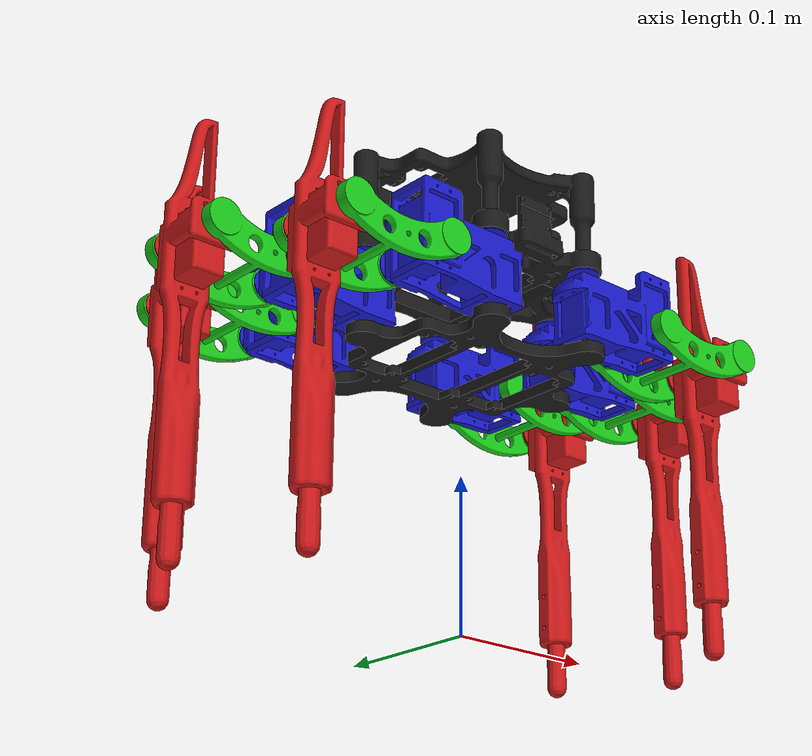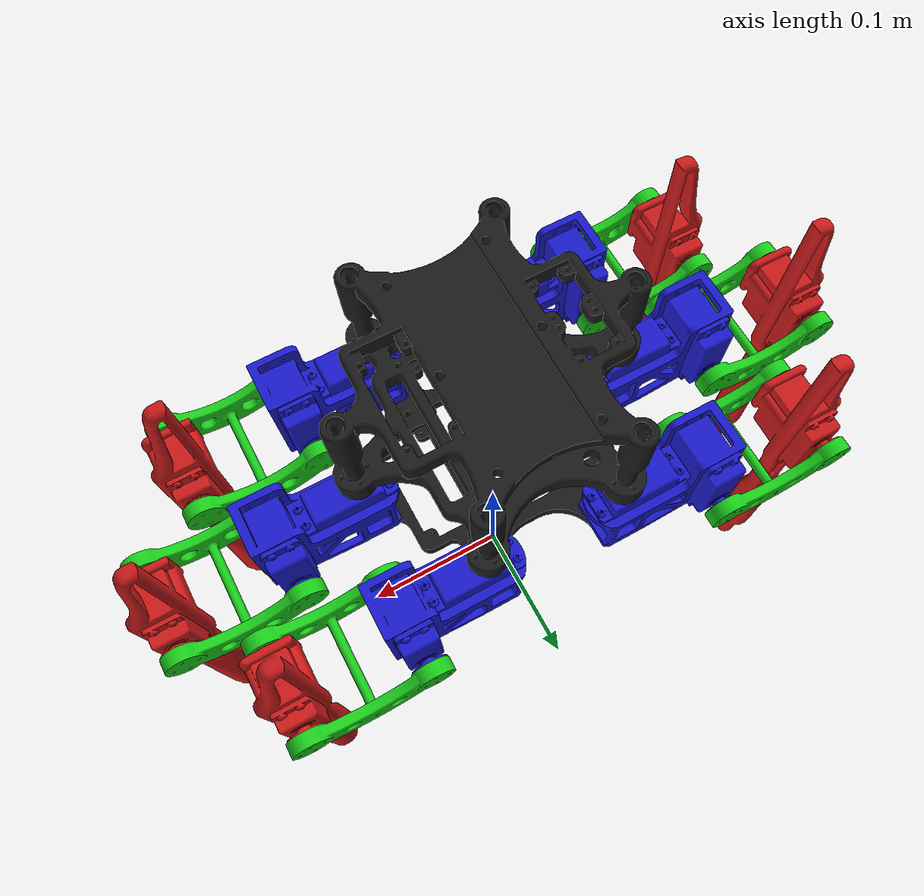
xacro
<?xml version="1.0"?>
<robot name="hexer_v_1_0" xmlns:xacro="http://www.ros.org/wiki/xacro">

    <xacro:include filename="material.xacro" />
    <xacro:include filename="inertia.xacro" />
    <xacro:include filename="base.urdf.xacro" />
    <xacro:include filename="leg_left.urdf.xacro" />
    <xacro:include filename="leg_right.urdf.xacro" />
    <xacro:include filename="gazebo.xacro" />

    <link name="ground" />
    <joint name="ground_base_link" type="fixed">
        <parent link="ground" />
        <child link="base_link" />
        <origin xyz="0 0 0.225" rpy="0 0 0" />
    </joint>

    <xacro:leg_left prefix="down"  origin_x="-0.04" origin_y="0.069" origin_z="-0.046" />
    <xacro:leg_left prefix="mid"  origin_x="-0.08" origin_y="-0.001" origin_z="-0.046" />
    <xacro:leg_left prefix="up"  origin_x="-0.04" origin_y="-0.069" origin_z="-0.046" />

    <xacro:leg_right prefix="down" origin_x="0.04" origin_y="0.069" origin_z="-0.046" />
    <xacro:leg_right prefix="mid" origin_x="0.08" origin_y="0" origin_z="-0.046" />
    <xacro:leg_right prefix="up" origin_x="0.04" origin_y="-0.069" origin_z="-0.046" />

</robot>

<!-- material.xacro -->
<robot xmlns:xacro="http://www.ros.org/wiki/xacro">

    <material name="grey">
        <color rgba="0.5 0.5 0.5 1" />
    </material>
    <material name="black">
        <color rgba="0.1 0.1 0.1 1" />
    </material>
    <material name="coxa">
        <color rgba="0.1 0.1 0.8 1" />
    </material>
    <material name="femur">
        <color rgba="0.1 0.8 0.1 1" />
    </material>
    <material name="tibia">
        <color rgba="0.8 0.1 0.1 1" />
    </material>

</robot>

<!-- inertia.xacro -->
<robot name="hexer_v_1_0" xmlns:xacro="http://www.ros.org/wiki/xacro">

    <xacro:macro name="main_body_inertia" params="m xyz rpy">
        <inertial>
            <origin xyz="${xyz}" rpy="${rpy}" />
            <mass value="${m}" />
            <inertia ixx="0.000208" ixy="0" ixz="0"
                    iyy="0.00018" iyz="0"
                    izz="0.000384" />
        </inertial>
    </xacro:macro>

    <xacro:macro name="main_body_down_inertia" params="m xyz rpy">
        <inertial>
            <origin xyz="${xyz}" rpy="${rpy}" />
            <mass value="${m}" />
            <inertia ixx="0.000141" ixy="0" ixz="0"
                    iyy="0.000144" iyz="0"
                    izz="0.000284" />
        </inertial>
    </xacro:macro>

    <xacro:macro name="main_body_up_inertia" params="m xyz rpy">
        <inertial>
            <origin xyz="${xyz}" rpy="${rpy}" />
            <mass value="${m}" />
            <inertia ixx="0.00027" ixy="0" ixz="0"
                    iyy="0.00025" iyz="0"
                    izz="0.000486" />
        </inertial>
    </xacro:macro>

    <xacro:macro name="coxa_inertia_right" params="m xyz rpy">
        <inertial>
            <origin xyz="${xyz}" rpy="${rpy}" />
            <mass value="${m}" />
            <inertia ixx="0.00002625" ixy="0" ixz="0"
                    iyy="0.000063" iyz="0"
                    izz="0.00005725" />
        </inertial>
    </xacro:macro>

    <xacro:macro name="femur_inertia_one_right" params="m xyz rpy">
        <inertial>
            <origin xyz="${xyz}" rpy="${rpy}" />
            <mass value="${m}" />
            <inertia ixx="0.0000007" ixy="0" ixz="0"
                    iyy="0.00001" iyz="0"
                    izz="0.00001" />
        </inertial>
    </xacro:macro>

    <xacro:macro name="tibia_inertia_right" params="m xyz rpy">
        <inertial>
            <origin xyz="${xyz}" rpy="${rpy}" />
            <mass value="${m}" />
            <inertia ixx="0.00036" ixy="0" ixz="0"
                    iyy="0.00036" iyz="0"
                    izz="0.000013" />
        </inertial>
    </xacro:macro>

    <xacro:macro name="coxa_inertia_left" params="m xyz rpy">
        <inertial>
            <origin xyz="${xyz}" rpy="${rpy}" />
            <mass value="${m}" />
            <inertia ixx="0.000063" ixy="0" ixz="0"
                    iyy="0.00002625" iyz="0"
                    izz="0.00005725" />
        </inertial>
    </xacro:macro>

     <xacro:macro name="femur_inertia_one_left" params="m xyz rpy">
        <inertial>
            <origin xyz="${xyz}" rpy="${rpy}" />
            <mass value="${m}" />
            <inertia ixx="0.00001" ixy="0" ixz="0"
                    iyy="0.0000007" iyz="0"
                    izz="0.00001" />
        </inertial>
    </xacro:macro>

    <xacro:macro name="tibia_inertia_left" params="m xyz rpy">
        <inertial>
            <origin xyz="${xyz}" rpy="${rpy}" />
            <mass value="${m}" />
            <inertia ixx="0.00036" ixy="0" ixz="0"
                    iyy="0.00036" iyz="0"
                    izz="0.000013" />
        </inertial>
    </xacro:macro>

</robot>

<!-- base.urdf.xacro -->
<robot xmlns:xacro="http://www.ros.org/wiki/xacro">

    <link name="base_link">
        <visual>
            <geometry>
                <mesh filename="package://hexer_description/mesh/base/base_robot.stl" scale="0.001 0.001 0.001"/>
            </geometry>
            <origin xyz="0 0 -0.061" rpy="0 0 0" />
            <material name="black" />
        </visual>
        <collision>
            <geometry>
                <box size="0.14 0.16 0.012" />
            </geometry>
            <origin xyz="0 0 0.011" rpy="0 0 0" />
        </collision>
        <xacro:main_body_inertia m="0.094" xyz="0 0 0" rpy="0 0 0" />
    </link>
    <link name="base_down_link">
        <visual>
            <geometry>
                <mesh filename="package://hexer_description/mesh/base/base_robot_down.stl" scale="0.001 0.001 0.001"/>
            </geometry>
            <origin xyz="0 -0.0017 -0.068" rpy="0 0 0" />
            <material name="black" />
        </visual>
        <collision>
            <geometry>
                <box size="0.14 0.16 0.012" />
            </geometry>
            <origin xyz="0 0 0.011" rpy="0 0 0" />
        </collision>
        <xacro:main_body_down_inertia m="0.066" xyz="0 0 0" rpy="0 0 0" />
    </link>
    <link name="base_up_link">
        <visual>
            <geometry>
                <mesh filename="package://hexer_description/mesh/base/base_robot_up.stl" scale="0.001 0.001 0.001"/>
            </geometry>
            <origin xyz="0 0.0012 -0.068" rpy="0 0 0" />
            <material name="black" />
        </visual>
        <collision>
            <geometry>
                <box size="0.14 0.16 0.012" />
            </geometry>
            <origin xyz="0 0 0.031" rpy="0 0 0" />
        </collision>
        <xacro:main_body_up_inertia m="0.135" xyz="0 0 0" rpy="0 0 0" />
    </link>

    <joint name="down_base_link" type="fixed">
        <parent link="base_link" />
        <child link="base_down_link" />
        <origin xyz="0 0 -0.063" rpy="0 0 0" />
    </joint>
    <joint name="up_base_link" type="fixed">
        <parent link="base_link" />
        <child link="base_up_link" />
        <origin xyz="0 0 0.031" rpy="0 0 0" />
    </joint>

</robot>

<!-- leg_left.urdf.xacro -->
<robot name="hexer_v_1_0" xmlns:xacro="http://www.ros.org/wiki/xacro">

    <xacro:macro name="leg_left" params="prefix origin_x origin_y origin_z">
        <link name="${prefix}_coxa_left_link">
            <visual>
                <geometry>
                    <mesh filename="package://hexer_description/mesh/leg/coxa_left.stl" scale="0.001 0.001 0.001"/>
                </geometry>
                <origin xyz="-0.0095 -0.02 -0.015" rpy="0 0 0" />
                <material name="coxa" />
            </visual>
            <collision>
                <geometry>
                    <box size="0.08 0.031 0.059" />
                </geometry>
                <origin xyz="-0.001 -0.0225 0.027" rpy="0 0 ${pi / 2.0}" />
            </collision>
            <xacro:coxa_inertia_left m="0.122" xyz="0 -0.03 0.02" rpy="0 0 0" />
        </link>
        <link name="${prefix}_femur_left_link">
            <visual>
                <geometry>
                    <mesh filename="package://hexer_description/mesh/leg/femur.stl" scale="0.001 0.001 0.001"/>
                </geometry>
                <origin xyz="0 -0.035 -0.051" rpy="0 0 0" />
                <material name="femur" />
            </visual>
            <collision>
                <geometry>
                    <box size="0.09 0.008 0.032" />
                </geometry>
                <origin xyz="0.005 -0.035 -0.0025" rpy="0 0 ${pi / 2.0}" />
            </collision>
            <xacro:femur_inertia_one_left m="0.013" xyz="0.005 -0.035 0" rpy="0 0 0" />
        </link>
        <link name="${prefix}_femur_left_two_link">
            <visual>
                <geometry>
                    <mesh filename="package://hexer_description/mesh/leg/femur_two.stl" scale="0.001 0.001 0.001"/>
                </geometry>
                <origin xyz="-0.024 -0.01 -0.051" rpy="0 0 ${pi}" />
                <material name="femur" />
            </visual>
            <collision>
                <geometry>
                    <box size="0.09 0.008 0.032" />
                </geometry>
                <origin xyz="-0.00425 -0.035 -0.0025" rpy="0 0 ${pi / 2.0}" />
            </collision>
            <xacro:femur_inertia_one_left m="0.013" xyz="-0.005 -0.035 0" rpy="0 0 0" />
        </link>
        <link name="${prefix}_tibia_left_link">
            <visual>
                <geometry>
                    <mesh filename="package://hexer_description/mesh/leg/tibia_right.stl" scale="0.001 0.001 0.001"/>
                </geometry>
                <origin xyz="0.01 -0.001 -0.0725" rpy="0 0 ${-pi / 2.0}" />
                <material name="tibia" />
            </visual>
            <collision>
                <geometry>
                    <box size="0.025 0.025 0.275" />
                </geometry>
                <origin xyz="0.02 0.002 -0.055" rpy="0 0 ${pi / 2.0}" />
            </collision>
            <xacro:tibia_inertia_left m="0.12" xyz="0.02 0 -0.04" rpy="0 0 0" />
        </link>

        <joint name="${prefix}_coxa_left_base" type="revolute">
            <parent link="base_link" />
            <child link="${prefix}_coxa_left_link" />
            <origin xyz="${origin_x} ${origin_y} ${origin_z}" rpy="0 0 ${-pi / 2.0}" />
            <axis xyz="0 0 1" />
            <limit lower="${-pi / 2.0}" upper="${pi / 2.0}" velocity="100" effort="100" />
            <dynamics friction="0.5" damping="0.1" />
        </joint>
        <joint name="${prefix}_femur_left_coxa" type="revolute">
            <parent link="${prefix}_coxa_left_link" />
            <child link="${prefix}_femur_left_link" />
            <origin xyz="-0.038 -0.0508 0.018" rpy="0 0 0" />
            <axis xyz="1 0 0" />
            <limit lower="${-pi / 2.0}" upper="${pi / 2.0}" velocity="100" effort="100" />
            <dynamics friction="0.5" damping="0.1" />
        </joint>
        <joint name="${prefix}_femur_left_two_femur" type="fixed">
            <parent link="${prefix}_femur_left_link" />
            <child link="${prefix}_femur_left_two_link" />
            <origin xyz="0.065 0 0" rpy="0 0 0" />
        </joint>
        <joint name="${prefix}_tibia_left_femur" type="revolute">
            <parent link="${prefix}_femur_left_link" />
            <child link="${prefix}_tibia_left_link" />
            <origin xyz="0.01 -0.07 0" rpy="0 0 0" />
            <axis xyz="1 0 0" />
            <limit lower="${-pi / 2.0}" upper="${pi / 2.0}" velocity="100" effort="100" />
            <dynamics friction="0.5" damping="0.1" />
        </joint>
    </xacro:macro>

</robot>

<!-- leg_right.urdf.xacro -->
<robot name="hexer_v_1_0" xmlns:xacro="http://www.ros.org/wiki/xacro">
    <xacro:macro name="leg_right" params="prefix origin_x origin_y origin_z">
        <link name="${prefix}_coxa_right_link">
            <visual>
                <geometry>
                    <mesh filename="package://hexer_description/mesh/leg/coxa_right.stl" scale="0.001 0.001 0.001" />
                </geometry>
                <origin xyz="-0.067 0.0435 -0.0025" rpy="0 0 ${-pi / 2.0}" />
                <material name="coxa" />
            </visual>
            <collision>
                <geometry>
                    <box size="0.08 0.031 0.059" />
                </geometry>
                <origin xyz="0.0225 0 0.027" rpy="0 0 0" />
            </collision>
            <xacro:coxa_inertia_right m="0.122" xyz="0.03 0 0.02" rpy="0 0 0" />
        </link>
        <link name="${prefix}_femur_right_link">
            <visual>
                <geometry>
                    <mesh filename="package://hexer_description/mesh/leg/femur.stl" scale="0.001 0.001 0.001"/>
                </geometry>
                <origin xyz="0.035 0 -0.051" rpy="0 0 ${-pi / 2.0}" />
                <material name="femur" />
            </visual>
            <collision>
                <geometry>
                    <box size="0.09 0.008 0.032" />
                </geometry>
                <origin xyz="0.035 -0.005 -0.0025" rpy="0 0 0" />
            </collision>
            <xacro:femur_inertia_one_right m="0.013" xyz="0.035 -0.005 0" rpy="0 0 0" />
        </link>
        <link name="${prefix}_femur_right_two_link">
            <visual>
                <geometry>
                    <mesh filename="package://hexer_description/mesh/leg/femur_two.stl" scale="0.001 0.001 0.001"/>
                </geometry>
                <origin xyz="0.06 0.023 -0.051" rpy="0 0 ${-3.0*pi / 2.0}" />
                <material name="femur" />
            </visual>
            <collision>
                <geometry>
                    <box size="0.09 0.008 0.032" />
                </geometry>
                <origin xyz="0.035 0.00325 -0.0025" rpy="0 0 0" />
            </collision>
            <xacro:femur_inertia_one_right m="0.013" xyz="0.035 0.005 0" rpy="0 0 0" />
        </link>
        <link name="${prefix}_tibia_right_link">
            <visual>
                <geometry>
                    <mesh filename="package://hexer_description/mesh/leg/tibia_left.stl" scale="0.001 0.001 0.001"/>
                </geometry>
                <origin xyz="0.003 -0.01875 -0.19525" rpy="0 0 ${pi}" />
                <material name="tibia" />
            </visual>
            <collision>
                <geometry>
                    <box size="0.025 0.025 0.275" />
                </geometry>
                <origin xyz="-0.002 -0.02 -0.055" rpy="0 0 ${pi / 2.0}" />
            </collision>
            <xacro:tibia_inertia_right m="0.12" xyz="0 -0.02 -0.04" rpy="0 0 0" />
        </link>

        <joint name="${prefix}_coxa_right_base" type="revolute">
            <parent link="base_link" />
            <child link="${prefix}_coxa_right_link" />
            <origin xyz="${origin_x} ${origin_y} ${origin_z}" rpy="0 0 0" />
            <axis xyz="0 0 1" />
            <limit lower="${-pi / 2.0}" upper="${pi / 2.0}" velocity="100" effort="100" />
            <dynamics friction="0.5" damping="0.1" />
        </joint>
        <joint name="${prefix}_femur_right_coxa" type="revolute">
            <parent link="${prefix}_coxa_right_link" />
            <child link="${prefix}_femur_right_link" />
            <origin xyz="0.0508 0.0385 0.018" rpy="0 0 0" />
            <axis xyz="0 1 0" />
            <limit lower="${-pi / 2.0}" upper="${pi / 2.0}" velocity="100" effort="100" />
            <dynamics friction="0.5" damping="0.1" />
        </joint>
        <joint name="${prefix}_femur_right_two_femur" type="fixed">
            <parent link="${prefix}_femur_right_link" />
            <child link="${prefix}_femur_right_two_link" />
            <origin xyz="0 -0.065 0" rpy="0 0 0" />
        </joint>
        <joint name="${prefix}_tibia_right_femur" type="revolute">
            <parent link="${prefix}_femur_right_link" />
            <child link="${prefix}_tibia_right_link" />
            <origin xyz="0.07 -0.01 0" rpy="0 0 0" />
            <axis xyz="0 1 0" />
            <limit lower="${-pi / 2.0}" upper="${pi / 2.0}" velocity="100" effort="100" />
            <dynamics friction="0.5" damping="0.1" />
        </joint>
    </xacro:macro>

</robot>
